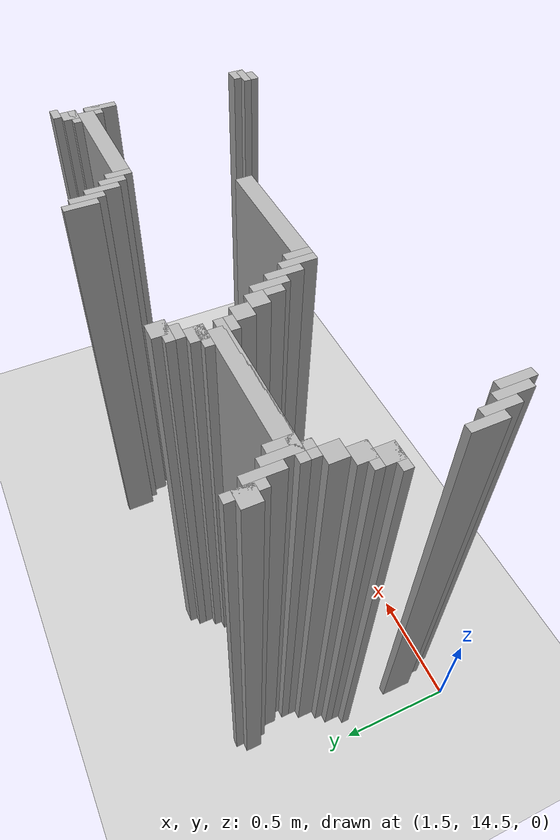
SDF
<sdf version="1.6">
 <world name="slam_world">
  <model name="ground_plane">
   <static>true</static>
   <link name="link">
    <collision name="collision">
     <geometry><plane><normal>0 0 1</normal><size>100 100</size></plane></geometry>
    </collision>
    <visual name="visual">
     <geometry><plane><normal>0 0 1</normal><size>100 100</size></plane></geometry>
     <material>
      <ambient>0.8 0.8 0.8 1</ambient>
      <diffuse>0.8 0.8 0.8 1</diffuse>
      <specular>0.8 0.8 0.8 1</specular>
     </material>
    </visual>
   </link>
  </model>
  <model name="wall_627">
   <static>true</static>
   <pose>3.1148491879350346 15.452436194895592 1.0 0 0 0</pose>
   <link name="link">
    <collision name="collision">
     <geometry><box><size>0.03480278422273782 0.13921113689095127 2.0</size></box></geometry>
    </collision>
    <visual name="visual">
     <geometry><box><size>0.03480278422273782 0.13921113689095127 2.0</size></box></geometry>
     <material><ambient>0.5 0.5 0.5 1</ambient><diffuse>0.7 0.7 0.7 1</diffuse></material>
    </visual>
   </link>
  </model>
  <model name="wall_642">
   <static>true</static>
   <pose>1.6879350348027842 15.417633410672853 1.0 0 0 0</pose>
   <link name="link">
    <collision name="collision">
     <geometry><box><size>0.03480278422273782 0.13921113689095127 2.0</size></box></geometry>
    </collision>
    <visual name="visual">
     <geometry><box><size>0.03480278422273782 0.13921113689095127 2.0</size></box></geometry>
     <material><ambient>0.5 0.5 0.5 1</ambient><diffuse>0.7 0.7 0.7 1</diffuse></material>
    </visual>
   </link>
  </model>
  <model name="wall_644">
   <static>true</static>
   <pose>3.1496519721577725 15.417633410672853 1.0 0 0 0</pose>
   <link name="link">
    <collision name="collision">
     <geometry><box><size>0.03480278422273782 0.13921113689095127 2.0</size></box></geometry>
    </collision>
    <visual name="visual">
     <geometry><box><size>0.03480278422273782 0.13921113689095127 2.0</size></box></geometry>
     <material><ambient>0.5 0.5 0.5 1</ambient><diffuse>0.7 0.7 0.7 1</diffuse></material>
    </visual>
   </link>
  </model>
  <model name="wall_658">
   <static>true</static>
   <pose>1.6705336426914152 15.417633410672853 1.0 0 0 0</pose>
   <link name="link">
    <collision name="collision">
     <geometry><box><size>0.06960556844547564 0.06960556844547564 2.0</size></box></geometry>
    </collision>
    <visual name="visual">
     <geometry><box><size>0.06960556844547564 0.06960556844547564 2.0</size></box></geometry>
     <material><ambient>0.5 0.5 0.5 1</ambient><diffuse>0.7 0.7 0.7 1</diffuse></material>
    </visual>
   </link>
  </model>
  <model name="wall_659">
   <static>true</static>
   <pose>2.3665893271461718 15.417633410672853 1.0 0 0 0</pose>
   <link name="link">
    <collision name="collision">
     <geometry><box><size>0.06960556844547564 0.06960556844547564 2.0</size></box></geometry>
    </collision>
    <visual name="visual">
     <geometry><box><size>0.06960556844547564 0.06960556844547564 2.0</size></box></geometry>
     <material><ambient>0.5 0.5 0.5 1</ambient><diffuse>0.7 0.7 0.7 1</diffuse></material>
    </visual>
   </link>
  </model>
  <model name="wall_671">
   <static>true</static>
   <pose>1.722737819025522 15.348027842227378 1.0 0 0 0</pose>
   <link name="link">
    <collision name="collision">
     <geometry><box><size>0.03480278422273782 0.13921113689095127 2.0</size></box></geometry>
    </collision>
    <visual name="visual">
     <geometry><box><size>0.03480278422273782 0.13921113689095127 2.0</size></box></geometry>
     <material><ambient>0.5 0.5 0.5 1</ambient><diffuse>0.7 0.7 0.7 1</diffuse></material>
    </visual>
   </link>
  </model>
  <model name="wall_672">
   <static>true</static>
   <pose>2.3491879350348026 15.400232018561484 1.0 0 0 0</pose>
   <link name="link">
    <collision name="collision">
     <geometry><box><size>0.10440835266821345 0.03480278422273782 2.0</size></box></geometry>
    </collision>
    <visual name="visual">
     <geometry><box><size>0.10440835266821345 0.03480278422273782 2.0</size></box></geometry>
     <material><ambient>0.5 0.5 0.5 1</ambient><diffuse>0.7 0.7 0.7 1</diffuse></material>
    </visual>
   </link>
  </model>
  <model name="wall_673">
   <static>true</static>
   <pose>3.1844547563805103 15.348027842227378 1.0 0 0 0</pose>
   <link name="link">
    <collision name="collision">
     <geometry><box><size>0.03480278422273782 0.13921113689095127 2.0</size></box></geometry>
    </collision>
    <visual name="visual">
     <geometry><box><size>0.03480278422273782 0.13921113689095127 2.0</size></box></geometry>
     <material><ambient>0.5 0.5 0.5 1</ambient><diffuse>0.7 0.7 0.7 1</diffuse></material>
    </visual>
   </link>
  </model>
  <model name="wall_687">
   <static>true</static>
   <pose>2.331786542923434 15.365429234338746 1.0 0 0 0</pose>
   <link name="link">
    <collision name="collision">
     <geometry><box><size>0.06960556844547564 0.03480278422273782 2.0</size></box></geometry>
    </collision>
    <visual name="visual">
     <geometry><box><size>0.06960556844547564 0.03480278422273782 2.0</size></box></geometry>
     <material><ambient>0.5 0.5 0.5 1</ambient><diffuse>0.7 0.7 0.7 1</diffuse></material>
    </visual>
   </link>
  </model>
  <model name="wall_688">
   <static>true</static>
   <pose>3.793503480278422 15.365429234338746 1.0 0 0 0</pose>
   <link name="link">
    <collision name="collision">
     <geometry><box><size>0.06960556844547564 0.03480278422273782 2.0</size></box></geometry>
    </collision>
    <visual name="visual">
     <geometry><box><size>0.06960556844547564 0.03480278422273782 2.0</size></box></geometry>
     <material><ambient>0.5 0.5 0.5 1</ambient><diffuse>0.7 0.7 0.7 1</diffuse></material>
    </visual>
   </link>
  </model>
  <model name="wall_696">
   <static>true</static>
   <pose>1.75754060324826 15.261020881670532 1.0 0 0 0</pose>
   <link name="link">
    <collision name="collision">
     <geometry><box><size>0.03480278422273782 0.17401392111368907 2.0</size></box></geometry>
    </collision>
    <visual name="visual">
     <geometry><box><size>0.03480278422273782 0.17401392111368907 2.0</size></box></geometry>
     <material><ambient>0.5 0.5 0.5 1</ambient><diffuse>0.7 0.7 0.7 1</diffuse></material>
    </visual>
   </link>
  </model>
  <model name="wall_697">
   <static>true</static>
   <pose>2.296983758700696 15.31322505800464 1.0 0 0 0</pose>
   <link name="link">
    <collision name="collision">
     <geometry><box><size>0.06960556844547564 0.06960556844547564 2.0</size></box></geometry>
    </collision>
    <visual name="visual">
     <geometry><box><size>0.06960556844547564 0.06960556844547564 2.0</size></box></geometry>
     <material><ambient>0.5 0.5 0.5 1</ambient><diffuse>0.7 0.7 0.7 1</diffuse></material>
    </visual>
   </link>
  </model>
  <model name="wall_698">
   <static>true</static>
   <pose>3.219257540603248 15.295823665893272 1.0 0 0 0</pose>
   <link name="link">
    <collision name="collision">
     <geometry><box><size>0.03480278422273782 0.10440835266821345 2.0</size></box></geometry>
    </collision>
    <visual name="visual">
     <geometry><box><size>0.03480278422273782 0.10440835266821345 2.0</size></box></geometry>
     <material><ambient>0.5 0.5 0.5 1</ambient><diffuse>0.7 0.7 0.7 1</diffuse></material>
    </visual>
   </link>
  </model>
  <model name="wall_699">
   <static>true</static>
   <pose>3.7587006960556844 15.31322505800464 1.0 0 0 0</pose>
   <link name="link">
    <collision name="collision">
     <geometry><box><size>0.06960556844547564 0.06960556844547564 2.0</size></box></geometry>
    </collision>
    <visual name="visual">
     <geometry><box><size>0.06960556844547564 0.06960556844547564 2.0</size></box></geometry>
     <material><ambient>0.5 0.5 0.5 1</ambient><diffuse>0.7 0.7 0.7 1</diffuse></material>
    </visual>
   </link>
  </model>
  <model name="wall_713">
   <static>true</static>
   <pose>1.7923433874709975 15.261020881670532 1.0 0 0 0</pose>
   <link name="link">
    <collision name="collision">
     <geometry><box><size>0.03480278422273782 0.10440835266821345 2.0</size></box></geometry>
    </collision>
    <visual name="visual">
     <geometry><box><size>0.03480278422273782 0.10440835266821345 2.0</size></box></geometry>
     <material><ambient>0.5 0.5 0.5 1</ambient><diffuse>0.7 0.7 0.7 1</diffuse></material>
    </visual>
   </link>
  </model>
  <model name="wall_714">
   <static>true</static>
   <pose>2.279582366589327 15.295823665893272 1.0 0 0 0</pose>
   <link name="link">
    <collision name="collision">
     <geometry><box><size>0.10440835266821345 0.03480278422273782 2.0</size></box></geometry>
    </collision>
    <visual name="visual">
     <geometry><box><size>0.10440835266821345 0.03480278422273782 2.0</size></box></geometry>
     <material><ambient>0.5 0.5 0.5 1</ambient><diffuse>0.7 0.7 0.7 1</diffuse></material>
    </visual>
   </link>
  </model>
  <model name="wall_715">
   <static>true</static>
   <pose>3.254060324825986 15.261020881670532 1.0 0 0 0</pose>
   <link name="link">
    <collision name="collision">
     <geometry><box><size>0.03480278422273782 0.10440835266821345 2.0</size></box></geometry>
    </collision>
    <visual name="visual">
     <geometry><box><size>0.03480278422273782 0.10440835266821345 2.0</size></box></geometry>
     <material><ambient>0.5 0.5 0.5 1</ambient><diffuse>0.7 0.7 0.7 1</diffuse></material>
    </visual>
   </link>
  </model>
  <model name="wall_716">
   <static>true</static>
   <pose>3.741299303944315 15.295823665893272 1.0 0 0 0</pose>
   <link name="link">
    <collision name="collision">
     <geometry><box><size>0.10440835266821345 0.03480278422273782 2.0</size></box></geometry>
    </collision>
    <visual name="visual">
     <geometry><box><size>0.10440835266821345 0.03480278422273782 2.0</size></box></geometry>
     <material><ambient>0.5 0.5 0.5 1</ambient><diffuse>0.7 0.7 0.7 1</diffuse></material>
    </visual>
   </link>
  </model>
  <model name="wall_729">
   <static>true</static>
   <pose>2.053364269141531 15.243619489559164 1.0 0 0 0</pose>
   <link name="link">
    <collision name="collision">
     <geometry><box><size>0.4872389791183295 0.06960556844547564 2.0</size></box></geometry>
    </collision>
    <visual name="visual">
     <geometry><box><size>0.4872389791183295 0.06960556844547564 2.0</size></box></geometry>
     <material><ambient>0.5 0.5 0.5 1</ambient><diffuse>0.7 0.7 0.7 1</diffuse></material>
    </visual>
   </link>
  </model>
  <model name="wall_730">
   <static>true</static>
   <pose>3.51508120649652 15.243619489559164 1.0 0 0 0</pose>
   <link name="link">
    <collision name="collision">
     <geometry><box><size>0.4872389791183295 0.06960556844547564 2.0</size></box></geometry>
    </collision>
    <visual name="visual">
     <geometry><box><size>0.4872389791183295 0.06960556844547564 2.0</size></box></geometry>
     <material><ambient>0.5 0.5 0.5 1</ambient><diffuse>0.7 0.7 0.7 1</diffuse></material>
    </visual>
   </link>
  </model>
  <model name="wall_739">
   <static>true</static>
   <pose>2.0185614849187936 15.226218097447795 1.0 0 0 0</pose>
   <link name="link">
    <collision name="collision">
     <geometry><box><size>0.6264501160092807 0.03480278422273782 2.0</size></box></geometry>
    </collision>
    <visual name="visual">
     <geometry><box><size>0.6264501160092807 0.03480278422273782 2.0</size></box></geometry>
     <material><ambient>0.5 0.5 0.5 1</ambient><diffuse>0.7 0.7 0.7 1</diffuse></material>
    </visual>
   </link>
  </model>
  <model name="wall_740">
   <static>true</static>
   <pose>3.776102088167053 15.174013921113689 1.0 0 0 0</pose>
   <link name="link">
    <collision name="collision">
     <geometry><box><size>0.03480278422273782 0.13921113689095127 2.0</size></box></geometry>
    </collision>
    <visual name="visual">
     <geometry><box><size>0.03480278422273782 0.13921113689095127 2.0</size></box></geometry>
     <material><ambient>0.5 0.5 0.5 1</ambient><diffuse>0.7 0.7 0.7 1</diffuse></material>
    </visual>
   </link>
  </model>
  <model name="wall_750">
   <static>true</static>
   <pose>1.740139211136891 15.191415313225058 1.0 0 0 0</pose>
   <link name="link">
    <collision name="collision">
     <geometry><box><size>0.06960556844547564 0.03480278422273782 2.0</size></box></geometry>
    </collision>
    <visual name="visual">
     <geometry><box><size>0.06960556844547564 0.03480278422273782 2.0</size></box></geometry>
     <material><ambient>0.5 0.5 0.5 1</ambient><diffuse>0.7 0.7 0.7 1</diffuse></material>
    </visual>
   </link>
  </model>
  <model name="wall_751">
   <static>true</static>
   <pose>2.296983758700696 15.191415313225058 1.0 0 0 0</pose>
   <link name="link">
    <collision name="collision">
     <geometry><box><size>0.06960556844547564 0.03480278422273782 2.0</size></box></geometry>
    </collision>
    <visual name="visual">
     <geometry><box><size>0.06960556844547564 0.03480278422273782 2.0</size></box></geometry>
     <material><ambient>0.5 0.5 0.5 1</ambient><diffuse>0.7 0.7 0.7 1</diffuse></material>
    </visual>
   </link>
  </model>
  <model name="wall_752">
   <static>true</static>
   <pose>3.7587006960556844 15.191415313225058 1.0 0 0 0</pose>
   <link name="link">
    <collision name="collision">
     <geometry><box><size>0.06960556844547564 0.03480278422273782 2.0</size></box></geometry>
    </collision>
    <visual name="visual">
     <geometry><box><size>0.06960556844547564 0.03480278422273782 2.0</size></box></geometry>
     <material><ambient>0.5 0.5 0.5 1</ambient><diffuse>0.7 0.7 0.7 1</diffuse></material>
    </visual>
   </link>
  </model>
  <model name="wall_762">
   <static>true</static>
   <pose>1.705336426914153 15.139211136890951 1.0 0 0 0</pose>
   <link name="link">
    <collision name="collision">
     <geometry><box><size>0.06960556844547564 0.06960556844547564 2.0</size></box></geometry>
    </collision>
    <visual name="visual">
     <geometry><box><size>0.06960556844547564 0.06960556844547564 2.0</size></box></geometry>
     <material><ambient>0.5 0.5 0.5 1</ambient><diffuse>0.7 0.7 0.7 1</diffuse></material>
    </visual>
   </link>
  </model>
  <model name="wall_763">
   <static>true</static>
   <pose>2.331786542923434 15.139211136890951 1.0 0 0 0</pose>
   <link name="link">
    <collision name="collision">
     <geometry><box><size>0.06960556844547564 0.06960556844547564 2.0</size></box></geometry>
    </collision>
    <visual name="visual">
     <geometry><box><size>0.06960556844547564 0.06960556844547564 2.0</size></box></geometry>
     <material><ambient>0.5 0.5 0.5 1</ambient><diffuse>0.7 0.7 0.7 1</diffuse></material>
    </visual>
   </link>
  </model>
  <model name="wall_774">
   <static>true</static>
   <pose>1.6705336426914152 15.069605568445475 1.0 0 0 0</pose>
   <link name="link">
    <collision name="collision">
     <geometry><box><size>0.06960556844547564 0.06960556844547564 2.0</size></box></geometry>
    </collision>
    <visual name="visual">
     <geometry><box><size>0.06960556844547564 0.06960556844547564 2.0</size></box></geometry>
     <material><ambient>0.5 0.5 0.5 1</ambient><diffuse>0.7 0.7 0.7 1</diffuse></material>
    </visual>
   </link>
  </model>
  <model name="wall_775">
   <static>true</static>
   <pose>2.3665893271461718 15.069605568445475 1.0 0 0 0</pose>
   <link name="link">
    <collision name="collision">
     <geometry><box><size>0.06960556844547564 0.06960556844547564 2.0</size></box></geometry>
    </collision>
    <visual name="visual">
     <geometry><box><size>0.06960556844547564 0.06960556844547564 2.0</size></box></geometry>
     <material><ambient>0.5 0.5 0.5 1</ambient><diffuse>0.7 0.7 0.7 1</diffuse></material>
    </visual>
   </link>
  </model>
  <model name="wall_786">
   <static>true</static>
   <pose>1.6531322505800463 15.052204176334106 1.0 0 0 0</pose>
   <link name="link">
    <collision name="collision">
     <geometry><box><size>0.10440835266821345 0.03480278422273782 2.0</size></box></geometry>
    </collision>
    <visual name="visual">
     <geometry><box><size>0.10440835266821345 0.03480278422273782 2.0</size></box></geometry>
     <material><ambient>0.5 0.5 0.5 1</ambient><diffuse>0.7 0.7 0.7 1</diffuse></material>
    </visual>
   </link>
  </model>
  <model name="wall_787">
   <static>true</static>
   <pose>2.4187935034802783 15.0 1.0 0 0 0</pose>
   <link name="link">
    <collision name="collision">
     <geometry><box><size>0.03480278422273782 0.13921113689095127 2.0</size></box></geometry>
    </collision>
    <visual name="visual">
     <geometry><box><size>0.03480278422273782 0.13921113689095127 2.0</size></box></geometry>
     <material><ambient>0.5 0.5 0.5 1</ambient><diffuse>0.7 0.7 0.7 1</diffuse></material>
    </visual>
   </link>
  </model>
  <model name="wall_798">
   <static>true</static>
   <pose>1.6357308584686774 15.0 1.0 0 0 0</pose>
   <link name="link">
    <collision name="collision">
     <geometry><box><size>0.06960556844547564 0.06960556844547564 2.0</size></box></geometry>
    </collision>
    <visual name="visual">
     <geometry><box><size>0.06960556844547564 0.06960556844547564 2.0</size></box></geometry>
     <material><ambient>0.5 0.5 0.5 1</ambient><diffuse>0.7 0.7 0.7 1</diffuse></material>
    </visual>
   </link>
  </model>
  <model name="wall_799">
   <static>true</static>
   <pose>2.4013921113689096 15.0 1.0 0 0 0</pose>
   <link name="link">
    <collision name="collision">
     <geometry><box><size>0.06960556844547564 0.06960556844547564 2.0</size></box></geometry>
    </collision>
    <visual name="visual">
     <geometry><box><size>0.06960556844547564 0.06960556844547564 2.0</size></box></geometry>
     <material><ambient>0.5 0.5 0.5 1</ambient><diffuse>0.7 0.7 0.7 1</diffuse></material>
    </visual>
   </link>
  </model>
  <model name="wall_807">
   <static>true</static>
   <pose>1.6183294663573085 14.982598607888631 1.0 0 0 0</pose>
   <link name="link">
    <collision name="collision">
     <geometry><box><size>0.10440835266821345 0.03480278422273782 2.0</size></box></geometry>
    </collision>
    <visual name="visual">
     <geometry><box><size>0.10440835266821345 0.03480278422273782 2.0</size></box></geometry>
     <material><ambient>0.5 0.5 0.5 1</ambient><diffuse>0.7 0.7 0.7 1</diffuse></material>
    </visual>
   </link>
  </model>
  <model name="wall_808">
   <static>true</static>
   <pose>2.453596287703016 14.930394431554523 1.0 0 0 0</pose>
   <link name="link">
    <collision name="collision">
     <geometry><box><size>0.03480278422273782 0.13921113689095127 2.0</size></box></geometry>
    </collision>
    <visual name="visual">
     <geometry><box><size>0.03480278422273782 0.13921113689095127 2.0</size></box></geometry>
     <material><ambient>0.5 0.5 0.5 1</ambient><diffuse>0.7 0.7 0.7 1</diffuse></material>
    </visual>
   </link>
  </model>
  <model name="wall_828">
   <static>true</static>
   <pose>2.488399071925754 14.860788863109049 1.0 0 0 0</pose>
   <link name="link">
    <collision name="collision">
     <geometry><box><size>0.03480278422273782 0.13921113689095127 2.0</size></box></geometry>
    </collision>
    <visual name="visual">
     <geometry><box><size>0.03480278422273782 0.13921113689095127 2.0</size></box></geometry>
     <material><ambient>0.5 0.5 0.5 1</ambient><diffuse>0.7 0.7 0.7 1</diffuse></material>
    </visual>
   </link>
  </model>
  <model name="wall_839">
   <static>true</static>
   <pose>2.523201856148492 14.84338747099768 1.0 0 0 0</pose>
   <link name="link">
    <collision name="collision">
     <geometry><box><size>0.03480278422273782 0.10440835266821345 2.0</size></box></geometry>
    </collision>
    <visual name="visual">
     <geometry><box><size>0.03480278422273782 0.10440835266821345 2.0</size></box></geometry>
     <material><ambient>0.5 0.5 0.5 1</ambient><diffuse>0.7 0.7 0.7 1</diffuse></material>
    </visual>
   </link>
  </model>
  <model name="wall_845">
   <static>true</static>
   <pose>2.784222737819025 14.825986078886311 1.0 0 0 0</pose>
   <link name="link">
    <collision name="collision">
     <geometry><box><size>0.4872389791183295 0.06960556844547564 2.0</size></box></geometry>
    </collision>
    <visual name="visual">
     <geometry><box><size>0.4872389791183295 0.06960556844547564 2.0</size></box></geometry>
     <material><ambient>0.5 0.5 0.5 1</ambient><diffuse>0.7 0.7 0.7 1</diffuse></material>
    </visual>
   </link>
  </model>
  <model name="wall_881">
   <static>true</static>
   <pose>1.6183294663573085 14.68677494199536 1.0 0 0 0</pose>
   <link name="link">
    <collision name="collision">
     <geometry><box><size>0.03480278422273782 0.13921113689095127 2.0</size></box></geometry>
    </collision>
    <visual name="visual">
     <geometry><box><size>0.03480278422273782 0.13921113689095127 2.0</size></box></geometry>
     <material><ambient>0.5 0.5 0.5 1</ambient><diffuse>0.7 0.7 0.7 1</diffuse></material>
    </visual>
   </link>
  </model>
  <model name="wall_901">
   <static>true</static>
   <pose>1.6531322505800463 14.617169373549883 1.0 0 0 0</pose>
   <link name="link">
    <collision name="collision">
     <geometry><box><size>0.03480278422273782 0.13921113689095127 2.0</size></box></geometry>
    </collision>
    <visual name="visual">
     <geometry><box><size>0.03480278422273782 0.13921113689095127 2.0</size></box></geometry>
     <material><ambient>0.5 0.5 0.5 1</ambient><diffuse>0.7 0.7 0.7 1</diffuse></material>
    </visual>
   </link>
  </model>
  <model name="wall_913">
   <static>true</static>
   <pose>1.6879350348027842 14.547563805104408 1.0 0 0 0</pose>
   <link name="link">
    <collision name="collision">
     <geometry><box><size>0.03480278422273782 0.13921113689095127 2.0</size></box></geometry>
    </collision>
    <visual name="visual">
     <geometry><box><size>0.03480278422273782 0.13921113689095127 2.0</size></box></geometry>
     <material><ambient>0.5 0.5 0.5 1</ambient><diffuse>0.7 0.7 0.7 1</diffuse></material>
    </visual>
   </link>
  </model>
  <model name="wall_925">
   <static>true</static>
   <pose>1.722737819025522 14.512761020881669 1.0 0 0 0</pose>
   <link name="link">
    <collision name="collision">
     <geometry><box><size>0.03480278422273782 0.13921113689095127 2.0</size></box></geometry>
    </collision>
    <visual name="visual">
     <geometry><box><size>0.03480278422273782 0.13921113689095127 2.0</size></box></geometry>
     <material><ambient>0.5 0.5 0.5 1</ambient><diffuse>0.7 0.7 0.7 1</diffuse></material>
    </visual>
   </link>
  </model>
  <model name="wall_936">
   <static>true</static>
   <pose>3.793503480278422 14.512761020881669 1.0 0 0 0</pose>
   <link name="link">
    <collision name="collision">
     <geometry><box><size>0.06960556844547564 0.06960556844547564 2.0</size></box></geometry>
    </collision>
    <visual name="visual">
     <geometry><box><size>0.06960556844547564 0.06960556844547564 2.0</size></box></geometry>
     <material><ambient>0.5 0.5 0.5 1</ambient><diffuse>0.7 0.7 0.7 1</diffuse></material>
    </visual>
   </link>
  </model>
  <model name="wall_945">
   <static>true</static>
   <pose>3.776102088167053 14.4953596287703 1.0 0 0 0</pose>
   <link name="link">
    <collision name="collision">
     <geometry><box><size>0.10440835266821345 0.03480278422273782 2.0</size></box></geometry>
    </collision>
    <visual name="visual">
     <geometry><box><size>0.10440835266821345 0.03480278422273782 2.0</size></box></geometry>
     <material><ambient>0.5 0.5 0.5 1</ambient><diffuse>0.7 0.7 0.7 1</diffuse></material>
    </visual>
   </link>
  </model>
  <model name="wall_955">
   <static>true</static>
   <pose>3.7587006960556844 14.460556844547563 1.0 0 0 0</pose>
   <link name="link">
    <collision name="collision">
     <geometry><box><size>0.06960556844547564 0.03480278422273782 2.0</size></box></geometry>
    </collision>
    <visual name="visual">
     <geometry><box><size>0.06960556844547564 0.03480278422273782 2.0</size></box></geometry>
     <material><ambient>0.5 0.5 0.5 1</ambient><diffuse>0.7 0.7 0.7 1</diffuse></material>
    </visual>
   </link>
  </model>
 </world>
</sdf>
